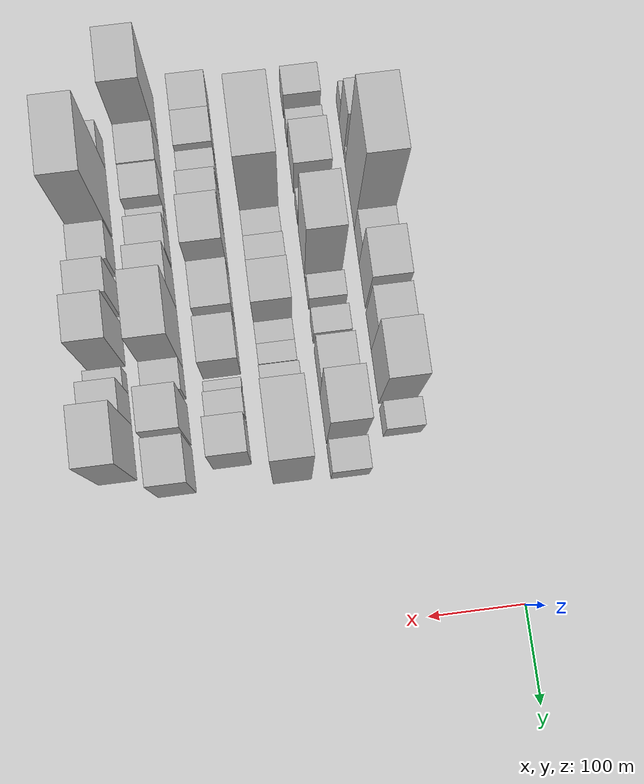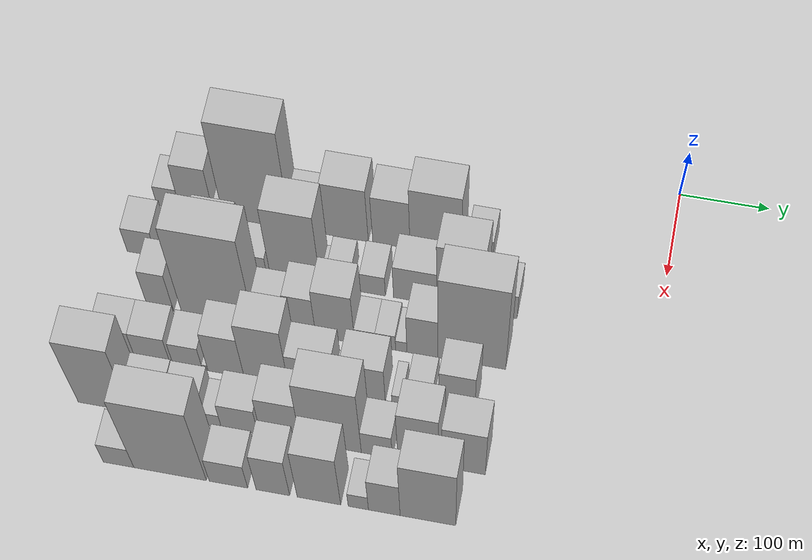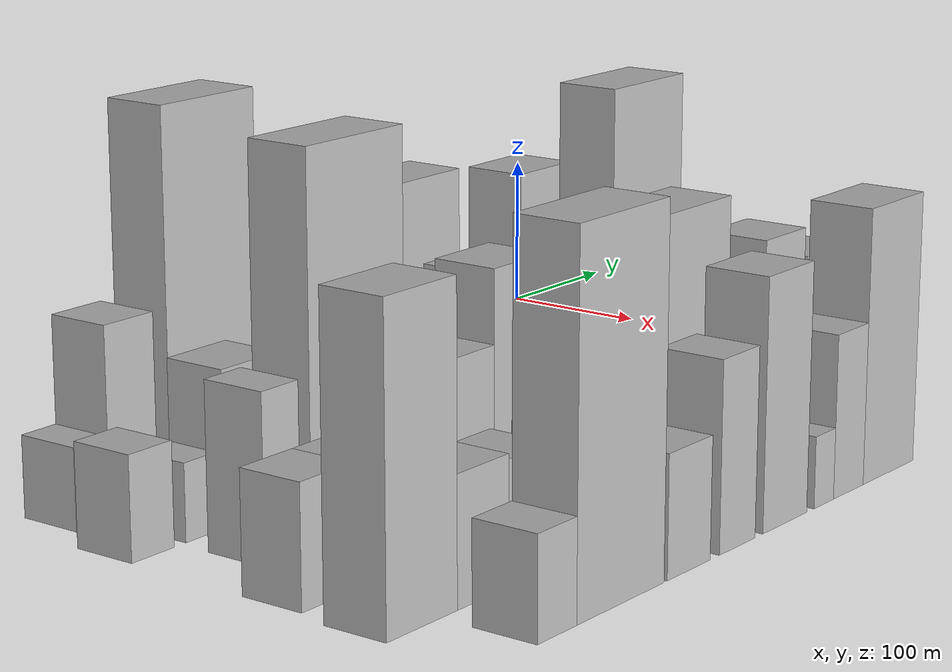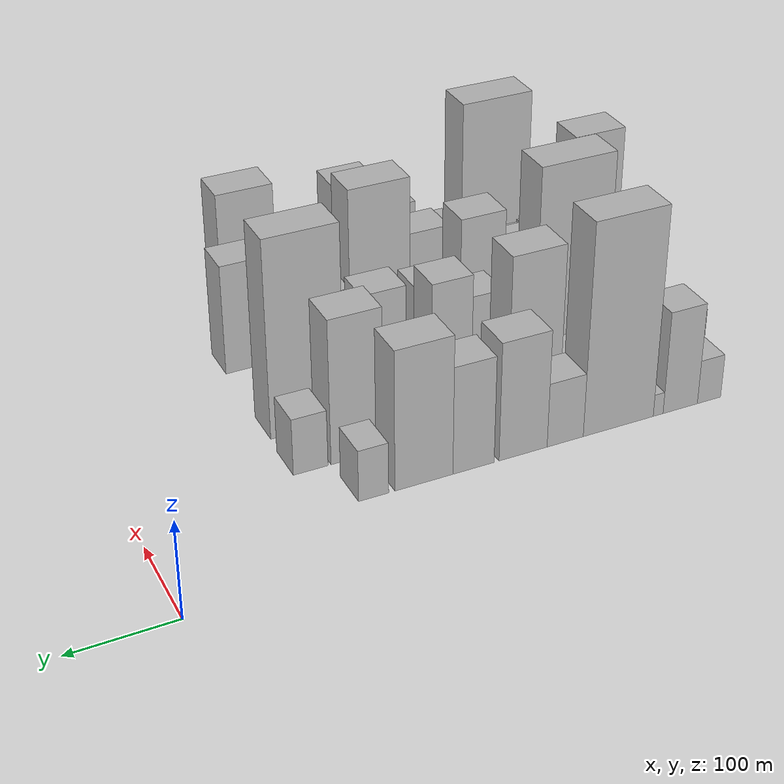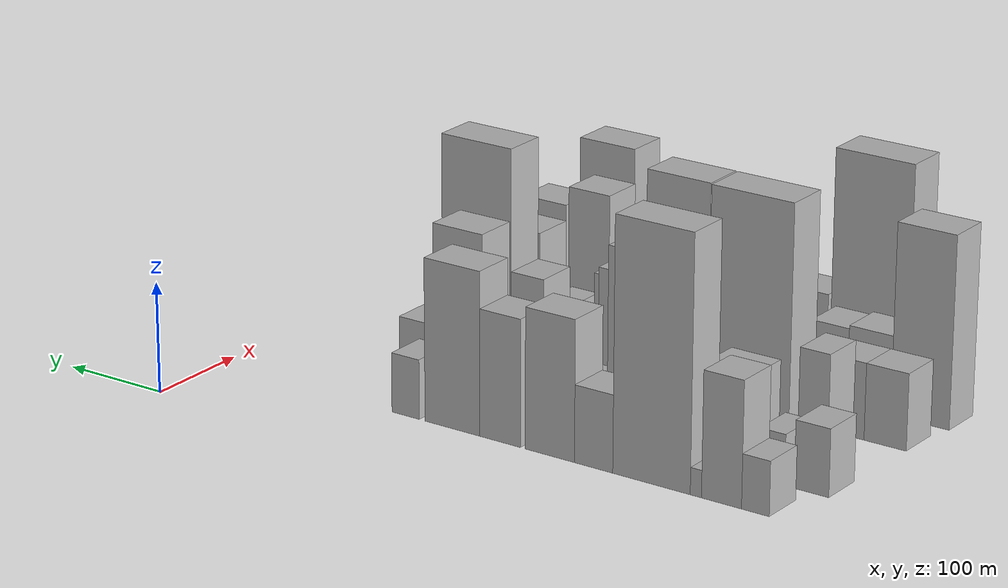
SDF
<sdf version="1.6">
 <world name="default">
  <model name="building_10">
   <static>1</static>
   <pose>100.0000 -553.4120 0 0.000000 0.000000 0.000000</pose>
   <link name="link">
    <pose>0 0 24.00 0 0 0</pose>
    <collision name="collision"><geometry><box><size>40.0000 26.1545 48.0000</size></box></geometry></collision>
    <visual name="visual">
     <cast_shadows>0</cast_shadows>
     <geometry><box><size>40.0000 26.1545 48.0000</size></box></geometry>
     <material>
      <script>
       <uri>model://HANNAS_wall/materials/scripts</uri>
       <uri>model://HANNAS_wall/materials/textures</uri>
       <name>vrc/HANNAS_wall</name>
      </script>
     </material>
    </visual>
   </link>
  </model>
  <model name="building_11">
   <static>1</static>
   <pose>100.0000 -521.2546 0 0.000000 0.000000 0.000000</pose>
   <link name="link">
    <pose>0 0 55.50 0 0 0</pose>
    <collision name="collision"><geometry><box><size>40.0000 38.1603 111.0000</size></box></geometry></collision>
    <visual name="visual">
     <cast_shadows>0</cast_shadows>
     <geometry><box><size>40.0000 38.1603 111.0000</size></box></geometry>
     <material>
      <script>
       <uri>model://HANNAS_wall/materials/scripts</uri>
       <uri>model://HANNAS_wall/materials/textures</uri>
       <name>vrc/HANNAS_wall</name>
      </script>
     </material>
    </visual>
   </link>
  </model>
  <model name="building_12">
   <static>1</static>
   <pose>100.0000 -496.7735 0 0.000000 0.000000 0.000000</pose>
   <link name="link">
    <pose>0 0 12.00 0 0 0</pose>
    <collision name="collision"><geometry><box><size>40.0000 10.8020 24.0000</size></box></geometry></collision>
    <visual name="visual">
     <cast_shadows>0</cast_shadows>
     <geometry><box><size>40.0000 10.8020 24.0000</size></box></geometry>
     <material>
      <script>
       <uri>model://HANNAS_wall/materials/scripts</uri>
       <uri>model://HANNAS_wall/materials/textures</uri>
       <name>vrc/HANNAS_wall</name>
      </script>
     </material>
    </visual>
   </link>
  </model>
  <model name="building_13">
   <static>1</static>
   <pose>100.0000 -453.5605 0 0.000000 0.000000 0.000000</pose>
   <link name="link">
    <pose>0 0 112.50 0 0 0</pose>
    <collision name="collision"><geometry><box><size>40.0000 75.6241 225.0000</size></box></geometry></collision>
    <visual name="visual">
     <cast_shadows>0</cast_shadows>
     <geometry><box><size>40.0000 75.6241 225.0000</size></box></geometry>
     <material>
      <script>
       <uri>model://HANNAS_wall/materials/scripts</uri>
       <uri>model://HANNAS_wall/materials/textures</uri>
       <name>vrc/HANNAS_wall</name>
      </script>
     </material>
    </visual>
   </link>
  </model>
  <model name="building_14">
   <static>1</static>
   <pose>100.0000 -396.7264 0 0.000000 0.000000 0.000000</pose>
   <link name="link">
    <pose>0 0 34.50 0 0 0</pose>
    <collision name="collision"><geometry><box><size>40.0000 38.0440 69.0000</size></box></geometry></collision>
    <visual name="visual">
     <cast_shadows>0</cast_shadows>
     <geometry><box><size>40.0000 38.0440 69.0000</size></box></geometry>
     <material>
      <script>
       <uri>model://HANNAS_wall/materials/scripts</uri>
       <uri>model://HANNAS_wall/materials/textures</uri>
       <name>vrc/HANNAS_wall</name>
      </script>
     </material>
    </visual>
   </link>
  </model>
  <model name="building_15">
   <static>1</static>
   <pose>100.0000 -352.8798 0 0.000000 0.000000 0.000000</pose>
   <link name="link">
    <pose>0 0 63.00 0 0 0</pose>
    <collision name="collision"><geometry><box><size>40.0000 49.6493 126.0000</size></box></geometry></collision>
    <visual name="visual">
     <cast_shadows>0</cast_shadows>
     <geometry><box><size>40.0000 49.6493 126.0000</size></box></geometry>
     <material>
      <script>
       <uri>model://HANNAS_wall/materials/scripts</uri>
       <uri>model://HANNAS_wall/materials/textures</uri>
       <name>vrc/HANNAS_wall</name>
      </script>
     </material>
    </visual>
   </link>
  </model>
  <model name="building_16">
   <static>1</static>
   <pose>100.0000 -302.2776 0 0.000000 0.000000 0.000000</pose>
   <link name="link">
    <pose>0 0 57.00 0 0 0</pose>
    <collision name="collision"><geometry><box><size>40.0000 41.5552 114.0000</size></box></geometry></collision>
    <visual name="visual">
     <cast_shadows>0</cast_shadows>
     <geometry><box><size>40.0000 41.5552 114.0000</size></box></geometry>
     <material>
      <script>
       <uri>model://HANNAS_wall/materials/scripts</uri>
       <uri>model://HANNAS_wall/materials/textures</uri>
       <name>vrc/HANNAS_wall</name>
      </script>
     </material>
    </visual>
   </link>
  </model>
  <model name="building_17">
   <static>1</static>
   <pose>100.0000 -252.9097 0 0.000000 0.000000 0.000000</pose>
   <link name="link">
    <pose>0 0 73.50 0 0 0</pose>
    <collision name="collision"><geometry><box><size>40.0000 57.1807 147.0000</size></box></geometry></collision>
    <visual name="visual">
     <cast_shadows>0</cast_shadows>
     <geometry><box><size>40.0000 57.1807 147.0000</size></box></geometry>
     <material>
      <script>
       <uri>model://HANNAS_wall/materials/scripts</uri>
       <uri>model://HANNAS_wall/materials/textures</uri>
       <name>vrc/HANNAS_wall</name>
      </script>
     </material>
    </visual>
   </link>
  </model>
  <model name="building_18">
   <static>1</static>
   <pose>100.0000 -203.7958 0 0.000000 0.000000 0.000000</pose>
   <link name="link">
    <pose>0 0 27.00 0 0 0</pose>
    <collision name="collision"><geometry><box><size>40.0000 29.0470 54.0000</size></box></geometry></collision>
    <visual name="visual">
     <cast_shadows>0</cast_shadows>
     <geometry><box><size>40.0000 29.0470 54.0000</size></box></geometry>
     <material>
      <script>
       <uri>model://HANNAS_wall/materials/scripts</uri>
       <uri>model://HANNAS_wall/materials/textures</uri>
       <name>vrc/HANNAS_wall</name>
      </script>
     </material>
    </visual>
   </link>
  </model>
  <model name="building_54">
   <static>1</static>
   <pose>160.0000 -569.0382 0 0.000000 0.000000 0.000000</pose>
   <link name="link">
    <pose>0 0 30.00 0 0 0</pose>
    <collision name="collision"><geometry><box><size>40.0000 32.7079 60.0000</size></box></geometry></collision>
    <visual name="visual">
     <cast_shadows>0</cast_shadows>
     <geometry><box><size>40.0000 32.7079 60.0000</size></box></geometry>
     <material>
      <script>
       <uri>model://HANNAS_wall/materials/scripts</uri>
       <uri>model://HANNAS_wall/materials/textures</uri>
       <name>vrc/HANNAS_wall</name>
      </script>
     </material>
    </visual>
   </link>
  </model>
  <model name="building_55">
   <static>1</static>
   <pose>160.0000 -531.1714 0 0.000000 0.000000 0.000000</pose>
   <link name="link">
    <pose>0 0 22.50 0 0 0</pose>
    <collision name="collision"><geometry><box><size>40.0000 25.0259 45.0000</size></box></geometry></collision>
    <visual name="visual">
     <cast_shadows>0</cast_shadows>
     <geometry><box><size>40.0000 25.0259 45.0000</size></box></geometry>
     <material>
      <script>
       <uri>model://HANNAS_wall/materials/scripts</uri>
       <uri>model://HANNAS_wall/materials/textures</uri>
       <name>vrc/HANNAS_wall</name>
      </script>
     </material>
    </visual>
   </link>
  </model>
  <model name="building_56">
   <static>1</static>
   <pose>160.0000 -488.9662 0 0.000000 0.000000 0.000000</pose>
   <link name="link">
    <pose>0 0 45.00 0 0 0</pose>
    <collision name="collision"><geometry><box><size>40.0000 47.3844 90.0000</size></box></geometry></collision>
    <visual name="visual">
     <cast_shadows>0</cast_shadows>
     <geometry><box><size>40.0000 47.3844 90.0000</size></box></geometry>
     <material>
      <script>
       <uri>model://HANNAS_wall/materials/scripts</uri>
       <uri>model://HANNAS_wall/materials/textures</uri>
       <name>vrc/HANNAS_wall</name>
      </script>
     </material>
    </visual>
   </link>
  </model>
  <model name="building_57">
   <static>1</static>
   <pose>160.0000 -442.0590 0 0.000000 0.000000 0.000000</pose>
   <link name="link">
    <pose>0 0 22.50 0 0 0</pose>
    <collision name="collision"><geometry><box><size>40.0000 26.4300 45.0000</size></box></geometry></collision>
    <visual name="visual">
     <cast_shadows>0</cast_shadows>
     <geometry><box><size>40.0000 26.4300 45.0000</size></box></geometry>
     <material>
      <script>
       <uri>model://HANNAS_wall/materials/scripts</uri>
       <uri>model://HANNAS_wall/materials/textures</uri>
       <name>vrc/HANNAS_wall</name>
      </script>
     </material>
    </visual>
   </link>
  </model>
  <model name="building_58">
   <static>1</static>
   <pose>160.0000 -396.9744 0 0.000000 0.000000 0.000000</pose>
   <link name="link">
    <pose>0 0 85.50 0 0 0</pose>
    <collision name="collision"><geometry><box><size>40.0000 55.7393 171.0000</size></box></geometry></collision>
    <visual name="visual">
     <cast_shadows>0</cast_shadows>
     <geometry><box><size>40.0000 55.7393 171.0000</size></box></geometry>
     <material>
      <script>
       <uri>model://HANNAS_wall/materials/scripts</uri>
       <uri>model://HANNAS_wall/materials/textures</uri>
       <name>vrc/HANNAS_wall</name>
      </script>
     </material>
    </visual>
   </link>
  </model>
  <model name="building_59">
   <static>1</static>
   <pose>160.0000 -365.0878 0 0.000000 0.000000 0.000000</pose>
   <link name="link">
    <pose>0 0 9.00 0 0 0</pose>
    <collision name="collision"><geometry><box><size>40.0000 8.0339 18.0000</size></box></geometry></collision>
    <visual name="visual">
     <cast_shadows>0</cast_shadows>
     <geometry><box><size>40.0000 8.0339 18.0000</size></box></geometry>
     <material>
      <script>
       <uri>model://HANNAS_wall/materials/scripts</uri>
       <uri>model://HANNAS_wall/materials/textures</uri>
       <name>vrc/HANNAS_wall</name>
      </script>
     </material>
    </visual>
   </link>
  </model>
  <model name="building_60">
   <static>1</static>
   <pose>160.0000 -347.8792 0 0.000000 0.000000 0.000000</pose>
   <link name="link">
    <pose>0 0 22.50 0 0 0</pose>
    <collision name="collision"><geometry><box><size>40.0000 26.3833 45.0000</size></box></geometry></collision>
    <visual name="visual">
     <cast_shadows>0</cast_shadows>
     <geometry><box><size>40.0000 26.3833 45.0000</size></box></geometry>
     <material>
      <script>
       <uri>model://HANNAS_wall/materials/scripts</uri>
       <uri>model://HANNAS_wall/materials/textures</uri>
       <name>vrc/HANNAS_wall</name>
      </script>
     </material>
    </visual>
   </link>
  </model>
  <model name="building_61">
   <static>1</static>
   <pose>160.0000 -310.9171 0 0.000000 0.000000 0.000000</pose>
   <link name="link">
    <pose>0 0 24.00 0 0 0</pose>
    <collision name="collision"><geometry><box><size>40.0000 27.5410 48.0000</size></box></geometry></collision>
    <visual name="visual">
     <cast_shadows>0</cast_shadows>
     <geometry><box><size>40.0000 27.5410 48.0000</size></box></geometry>
     <material>
      <script>
       <uri>model://HANNAS_wall/materials/scripts</uri>
       <uri>model://HANNAS_wall/materials/textures</uri>
       <name>vrc/HANNAS_wall</name>
      </script>
     </material>
    </visual>
   </link>
  </model>
  <model name="building_62">
   <static>1</static>
   <pose>160.0000 -264.4019 0 0.000000 0.000000 0.000000</pose>
   <link name="link">
    <pose>0 0 40.50 0 0 0</pose>
    <collision name="collision"><geometry><box><size>40.0000 47.4893 81.0000</size></box></geometry></collision>
    <visual name="visual">
     <cast_shadows>0</cast_shadows>
     <geometry><box><size>40.0000 47.4893 81.0000</size></box></geometry>
     <material>
      <script>
       <uri>model://HANNAS_wall/materials/scripts</uri>
       <uri>model://HANNAS_wall/materials/textures</uri>
       <name>vrc/HANNAS_wall</name>
      </script>
     </material>
    </visual>
   </link>
  </model>
  <model name="building_63">
   <static>1</static>
   <pose>160.0000 -214.7615 0 0.000000 0.000000 0.000000</pose>
   <link name="link">
    <pose>0 0 76.50 0 0 0</pose>
    <collision name="collision"><geometry><box><size>40.0000 51.7914 153.0000</size></box></geometry></collision>
    <visual name="visual">
     <cast_shadows>0</cast_shadows>
     <geometry><box><size>40.0000 51.7914 153.0000</size></box></geometry>
     <material>
      <script>
       <uri>model://HANNAS_wall/materials/scripts</uri>
       <uri>model://HANNAS_wall/materials/textures</uri>
       <name>vrc/HANNAS_wall</name>
      </script>
     </material>
    </visual>
   </link>
  </model>
  <model name="building_64">
   <static>1</static>
   <pose>160.0000 -169.0267 0 0.000000 0.000000 0.000000</pose>
   <link name="link">
    <pose>0 0 30.00 0 0 0</pose>
    <collision name="collision"><geometry><box><size>40.0000 33.6783 60.0000</size></box></geometry></collision>
    <visual name="visual">
     <cast_shadows>0</cast_shadows>
     <geometry><box><size>40.0000 33.6783 60.0000</size></box></geometry>
     <material>
      <script>
       <uri>model://HANNAS_wall/materials/scripts</uri>
       <uri>model://HANNAS_wall/materials/textures</uri>
       <name>vrc/HANNAS_wall</name>
      </script>
     </material>
    </visual>
   </link>
  </model>
  <model name="building_104">
   <static>1</static>
   <pose>220.0000 -533.1978 0 0.000000 0.000000 0.000000</pose>
   <link name="link">
    <pose>0 0 48.00 0 0 0</pose>
    <collision name="collision"><geometry><box><size>40.0000 29.0231 96.0000</size></box></geometry></collision>
    <visual name="visual">
     <cast_shadows>0</cast_shadows>
     <geometry><box><size>40.0000 29.0231 96.0000</size></box></geometry>
     <material>
      <script>
       <uri>model://HANNAS_wall/materials/scripts</uri>
       <uri>model://HANNAS_wall/materials/textures</uri>
       <name>vrc/HANNAS_wall</name>
      </script>
     </material>
    </visual>
   </link>
  </model>
  <model name="building_105">
   <static>1</static>
   <pose>220.0000 -469.8214 0 0.000000 0.000000 0.000000</pose>
   <link name="link">
    <pose>0 0 109.50 0 0 0</pose>
    <collision name="collision"><geometry><box><size>40.0000 79.7295 219.0000</size></box></geometry></collision>
    <visual name="visual">
     <cast_shadows>0</cast_shadows>
     <geometry><box><size>40.0000 79.7295 219.0000</size></box></geometry>
     <material>
      <script>
       <uri>model://HANNAS_wall/materials/scripts</uri>
       <uri>model://HANNAS_wall/materials/textures</uri>
       <name>vrc/HANNAS_wall</name>
      </script>
     </material>
    </visual>
   </link>
  </model>
  <model name="building_106">
   <static>1</static>
   <pose>220.0000 -411.6136 0 0.000000 0.000000 0.000000</pose>
   <link name="link">
    <pose>0 0 34.50 0 0 0</pose>
    <collision name="collision"><geometry><box><size>40.0000 36.6861 69.0000</size></box></geometry></collision>
    <visual name="visual">
     <cast_shadows>0</cast_shadows>
     <geometry><box><size>40.0000 36.6861 69.0000</size></box></geometry>
     <material>
      <script>
       <uri>model://HANNAS_wall/materials/scripts</uri>
       <uri>model://HANNAS_wall/materials/textures</uri>
       <name>vrc/HANNAS_wall</name>
      </script>
     </material>
    </visual>
   </link>
  </model>
  <model name="building_107">
   <static>1</static>
   <pose>220.0000 -377.3338 0 0.000000 0.000000 0.000000</pose>
   <link name="link">
    <pose>0 0 49.50 0 0 0</pose>
    <collision name="collision"><geometry><box><size>40.0000 31.8736 99.0000</size></box></geometry></collision>
    <visual name="visual">
     <cast_shadows>0</cast_shadows>
     <geometry><box><size>40.0000 31.8736 99.0000</size></box></geometry>
     <material>
      <script>
       <uri>model://HANNAS_wall/materials/scripts</uri>
       <uri>model://HANNAS_wall/materials/textures</uri>
       <name>vrc/HANNAS_wall</name>
      </script>
     </material>
    </visual>
   </link>
  </model>
  <model name="building_108">
   <static>1</static>
   <pose>220.0000 -340.1120 0 0.000000 0.000000 0.000000</pose>
   <link name="link">
    <pose>0 0 61.50 0 0 0</pose>
    <collision name="collision"><geometry><box><size>40.0000 42.5701 123.0000</size></box></geometry></collision>
    <visual name="visual">
     <cast_shadows>0</cast_shadows>
     <geometry><box><size>40.0000 42.5701 123.0000</size></box></geometry>
     <material>
      <script>
       <uri>model://HANNAS_wall/materials/scripts</uri>
       <uri>model://HANNAS_wall/materials/textures</uri>
       <name>vrc/HANNAS_wall</name>
      </script>
     </material>
    </visual>
   </link>
  </model>
  <model name="building_109">
   <static>1</static>
   <pose>220.0000 -307.3643 0 0.000000 0.000000 0.000000</pose>
   <link name="link">
    <pose>0 0 19.50 0 0 0</pose>
    <collision name="collision"><geometry><box><size>40.0000 22.9253 39.0000</size></box></geometry></collision>
    <visual name="visual">
     <cast_shadows>0</cast_shadows>
     <geometry><box><size>40.0000 22.9253 39.0000</size></box></geometry>
     <material>
      <script>
       <uri>model://HANNAS_wall/materials/scripts</uri>
       <uri>model://HANNAS_wall/materials/textures</uri>
       <name>vrc/HANNAS_wall</name>
      </script>
     </material>
    </visual>
   </link>
  </model>
  <model name="building_110">
   <static>1</static>
   <pose>220.0000 -284.9849 0 0.000000 0.000000 0.000000</pose>
   <link name="link">
    <pose>0 0 19.50 0 0 0</pose>
    <collision name="collision"><geometry><box><size>40.0000 21.8335 39.0000</size></box></geometry></collision>
    <visual name="visual">
     <cast_shadows>0</cast_shadows>
     <geometry><box><size>40.0000 21.8335 39.0000</size></box></geometry>
     <material>
      <script>
       <uri>model://HANNAS_wall/materials/scripts</uri>
       <uri>model://HANNAS_wall/materials/textures</uri>
       <name>vrc/HANNAS_wall</name>
      </script>
     </material>
    </visual>
   </link>
  </model>
  <model name="building_111">
   <static>1</static>
   <pose>220.0000 -267.8997 0 0.000000 0.000000 0.000000</pose>
   <link name="link">
    <pose>0 0 13.50 0 0 0</pose>
    <collision name="collision"><geometry><box><size>40.0000 12.3370 27.0000</size></box></geometry></collision>
    <visual name="visual">
     <cast_shadows>0</cast_shadows>
     <geometry><box><size>40.0000 12.3370 27.0000</size></box></geometry>
     <material>
      <script>
       <uri>model://HANNAS_wall/materials/scripts</uri>
       <uri>model://HANNAS_wall/materials/textures</uri>
       <name>vrc/HANNAS_wall</name>
      </script>
     </material>
    </visual>
   </link>
  </model>
  <model name="building_112">
   <static>1</static>
   <pose>220.0000 -244.8196 0 0.000000 0.000000 0.000000</pose>
   <link name="link">
    <pose>0 0 49.50 0 0 0</pose>
    <collision name="collision"><geometry><box><size>40.0000 33.8231 99.0000</size></box></geometry></collision>
    <visual name="visual">
     <cast_shadows>0</cast_shadows>
     <geometry><box><size>40.0000 33.8231 99.0000</size></box></geometry>
     <material>
      <script>
       <uri>model://HANNAS_wall/materials/scripts</uri>
       <uri>model://HANNAS_wall/materials/textures</uri>
       <name>vrc/HANNAS_wall</name>
      </script>
     </material>
    </visual>
   </link>
  </model>
  <model name="building_113">
   <static>1</static>
   <pose>220.0000 -191.0599 0 0.000000 0.000000 0.000000</pose>
   <link name="link">
    <pose>0 0 105.00 0 0 0</pose>
    <collision name="collision"><geometry><box><size>40.0000 73.6963 210.0000</size></box></geometry></collision>
    <visual name="visual">
     <cast_shadows>0</cast_shadows>
     <geometry><box><size>40.0000 73.6963 210.0000</size></box></geometry>
     <material>
      <script>
       <uri>model://HANNAS_wall/materials/scripts</uri>
       <uri>model://HANNAS_wall/materials/textures</uri>
       <name>vrc/HANNAS_wall</name>
      </script>
     </material>
    </visual>
   </link>
  </model>
  <model name="building_158">
   <static>1</static>
   <pose>280.0000 -567.2385 0 0.000000 0.000000 0.000000</pose>
   <link name="link">
    <pose>0 0 34.50 0 0 0</pose>
    <collision name="collision"><geometry><box><size>40.0000 40.6341 69.0000</size></box></geometry></collision>
    <visual name="visual">
     <cast_shadows>0</cast_shadows>
     <geometry><box><size>40.0000 40.6341 69.0000</size></box></geometry>
     <material>
      <script>
       <uri>model://HANNAS_wall/materials/scripts</uri>
       <uri>model://HANNAS_wall/materials/textures</uri>
       <name>vrc/HANNAS_wall</name>
      </script>
     </material>
    </visual>
   </link>
  </model>
  <model name="building_159">
   <static>1</static>
   <pose>280.0000 -527.5071 0 0.000000 0.000000 0.000000</pose>
   <link name="link">
    <pose>0 0 34.50 0 0 0</pose>
    <collision name="collision"><geometry><box><size>40.0000 38.8287 69.0000</size></box></geometry></collision>
    <visual name="visual">
     <cast_shadows>0</cast_shadows>
     <geometry><box><size>40.0000 38.8287 69.0000</size></box></geometry>
     <material>
      <script>
       <uri>model://HANNAS_wall/materials/scripts</uri>
       <uri>model://HANNAS_wall/materials/textures</uri>
       <name>vrc/HANNAS_wall</name>
      </script>
     </material>
    </visual>
   </link>
  </model>
  <model name="building_160">
   <static>1</static>
   <pose>280.0000 -488.8981 0 0.000000 0.000000 0.000000</pose>
   <link name="link">
    <pose>0 0 30.00 0 0 0</pose>
    <collision name="collision"><geometry><box><size>40.0000 32.3893 60.0000</size></box></geometry></collision>
    <visual name="visual">
     <cast_shadows>0</cast_shadows>
     <geometry><box><size>40.0000 32.3893 60.0000</size></box></geometry>
     <material>
      <script>
       <uri>model://HANNAS_wall/materials/scripts</uri>
       <uri>model://HANNAS_wall/materials/textures</uri>
       <name>vrc/HANNAS_wall</name>
      </script>
     </material>
    </visual>
   </link>
  </model>
  <model name="building_161">
   <static>1</static>
   <pose>280.0000 -469.6710 0 0.000000 0.000000 0.000000</pose>
   <link name="link">
    <pose>0 0 7.50 0 0 0</pose>
    <collision name="collision"><geometry><box><size>40.0000 6.0651 15.0000</size></box></geometry></collision>
    <visual name="visual">
     <cast_shadows>0</cast_shadows>
     <geometry><box><size>40.0000 6.0651 15.0000</size></box></geometry>
     <material>
      <script>
       <uri>model://HANNAS_wall/materials/scripts</uri>
       <uri>model://HANNAS_wall/materials/textures</uri>
       <name>vrc/HANNAS_wall</name>
      </script>
     </material>
    </visual>
   </link>
  </model>
  <model name="building_162">
   <static>1</static>
   <pose>280.0000 -446.8556 0 0.000000 0.000000 0.000000</pose>
   <link name="link">
    <pose>0 0 52.50 0 0 0</pose>
    <collision name="collision"><geometry><box><size>40.0000 39.5656 105.0000</size></box></geometry></collision>
    <visual name="visual">
     <cast_shadows>0</cast_shadows>
     <geometry><box><size>40.0000 39.5656 105.0000</size></box></geometry>
     <material>
      <script>
       <uri>model://HANNAS_wall/materials/scripts</uri>
       <uri>model://HANNAS_wall/materials/textures</uri>
       <name>vrc/HANNAS_wall</name>
      </script>
     </material>
    </visual>
   </link>
  </model>
  <model name="building_163">
   <static>1</static>
   <pose>280.0000 -402.9466 0 0.000000 0.000000 0.000000</pose>
   <link name="link">
    <pose>0 0 73.50 0 0 0</pose>
    <collision name="collision"><geometry><box><size>40.0000 48.2525 147.0000</size></box></geometry></collision>
    <visual name="visual">
     <cast_shadows>0</cast_shadows>
     <geometry><box><size>40.0000 48.2525 147.0000</size></box></geometry>
     <material>
      <script>
       <uri>model://HANNAS_wall/materials/scripts</uri>
       <uri>model://HANNAS_wall/materials/textures</uri>
       <name>vrc/HANNAS_wall</name>
      </script>
     </material>
    </visual>
   </link>
  </model>
  <model name="building_164">
   <static>1</static>
   <pose>280.0000 -354.5082 0 0.000000 0.000000 0.000000</pose>
   <link name="link">
    <pose>0 0 42.00 0 0 0</pose>
    <collision name="collision"><geometry><box><size>40.0000 48.6243 84.0000</size></box></geometry></collision>
    <visual name="visual">
     <cast_shadows>0</cast_shadows>
     <geometry><box><size>40.0000 48.6243 84.0000</size></box></geometry>
     <material>
      <script>
       <uri>model://HANNAS_wall/materials/scripts</uri>
       <uri>model://HANNAS_wall/materials/textures</uri>
       <name>vrc/HANNAS_wall</name>
      </script>
     </material>
    </visual>
   </link>
  </model>
  <model name="building_165">
   <static>1</static>
   <pose>280.0000 -325.3545 0 0.000000 0.000000 0.000000</pose>
   <link name="link">
    <pose>0 0 12.00 0 0 0</pose>
    <collision name="collision"><geometry><box><size>40.0000 9.6832 24.0000</size></box></geometry></collision>
    <visual name="visual">
     <cast_shadows>0</cast_shadows>
     <geometry><box><size>40.0000 9.6832 24.0000</size></box></geometry>
     <material>
      <script>
       <uri>model://HANNAS_wall/materials/scripts</uri>
       <uri>model://HANNAS_wall/materials/textures</uri>
       <name>vrc/HANNAS_wall</name>
      </script>
     </material>
    </visual>
   </link>
  </model>
  <model name="building_166">
   <static>1</static>
   <pose>280.0000 -297.0062 0 0.000000 0.000000 0.000000</pose>
   <link name="link">
    <pose>0 0 45.00 0 0 0</pose>
    <collision name="collision"><geometry><box><size>40.0000 47.0134 90.0000</size></box></geometry></collision>
    <visual name="visual">
     <cast_shadows>0</cast_shadows>
     <geometry><box><size>40.0000 47.0134 90.0000</size></box></geometry>
     <material>
      <script>
       <uri>model://HANNAS_wall/materials/scripts</uri>
       <uri>model://HANNAS_wall/materials/textures</uri>
       <name>vrc/HANNAS_wall</name>
      </script>
     </material>
    </visual>
   </link>
  </model>
  <model name="building_167">
   <static>1</static>
   <pose>280.0000 -260.8635 0 0.000000 0.000000 0.000000</pose>
   <link name="link">
    <pose>0 0 12.00 0 0 0</pose>
    <collision name="collision"><geometry><box><size>40.0000 11.2719 24.0000</size></box></geometry></collision>
    <visual name="visual">
     <cast_shadows>0</cast_shadows>
     <geometry><box><size>40.0000 11.2719 24.0000</size></box></geometry>
     <material>
      <script>
       <uri>model://HANNAS_wall/materials/scripts</uri>
       <uri>model://HANNAS_wall/materials/textures</uri>
       <name>vrc/HANNAS_wall</name>
      </script>
     </material>
    </visual>
   </link>
  </model>
  <model name="building_168">
   <static>1</static>
   <pose>280.0000 -236.5113 0 0.000000 0.000000 0.000000</pose>
   <link name="link">
    <pose>0 0 27.00 0 0 0</pose>
    <collision name="collision"><geometry><box><size>40.0000 27.4324 54.0000</size></box></geometry></collision>
    <visual name="visual">
     <cast_shadows>0</cast_shadows>
     <geometry><box><size>40.0000 27.4324 54.0000</size></box></geometry>
     <material>
      <script>
       <uri>model://HANNAS_wall/materials/scripts</uri>
       <uri>model://HANNAS_wall/materials/textures</uri>
       <name>vrc/HANNAS_wall</name>
      </script>
     </material>
    </visual>
   </link>
  </model>
  <model name="building_169">
   <static>1</static>
   <pose>280.0000 -219.3157 0 0.000000 0.000000 0.000000</pose>
   <link name="link">
    <pose>0 0 7.50 0 0 0</pose>
    <collision name="collision"><geometry><box><size>40.0000 6.9588 15.0000</size></box></geometry></collision>
    <visual name="visual">
     <cast_shadows>0</cast_shadows>
     <geometry><box><size>40.0000 6.9588 15.0000</size></box></geometry>
     <material>
      <script>
       <uri>model://HANNAS_wall/materials/scripts</uri>
       <uri>model://HANNAS_wall/materials/textures</uri>
       <name>vrc/HANNAS_wall</name>
      </script>
     </material>
    </visual>
   </link>
  </model>
  <model name="building_170">
   <static>1</static>
   <pose>280.0000 -196.5326 0 0.000000 0.000000 0.000000</pose>
   <link name="link">
    <pose>0 0 57.00 0 0 0</pose>
    <collision name="collision"><geometry><box><size>40.0000 38.6075 114.0000</size></box></geometry></collision>
    <visual name="visual">
     <cast_shadows>0</cast_shadows>
     <geometry><box><size>40.0000 38.6075 114.0000</size></box></geometry>
     <material>
      <script>
       <uri>model://HANNAS_wall/materials/scripts</uri>
       <uri>model://HANNAS_wall/materials/textures</uri>
       <name>vrc/HANNAS_wall</name>
      </script>
     </material>
    </visual>
   </link>
  </model>
  <model name="building_216">
   <static>1</static>
   <pose>340.0000 -565.8324 0 0.000000 0.000000 0.000000</pose>
   <link name="link">
    <pose>0 0 87.00 0 0 0</pose>
    <collision name="collision"><geometry><box><size>40.0000 56.6476 174.0000</size></box></geometry></collision>
    <visual name="visual">
     <cast_shadows>0</cast_shadows>
     <geometry><box><size>40.0000 56.6476 174.0000</size></box></geometry>
     <material>
      <script>
       <uri>model://HANNAS_wall/materials/scripts</uri>
       <uri>model://HANNAS_wall/materials/textures</uri>
       <name>vrc/HANNAS_wall</name>
      </script>
     </material>
    </visual>
   </link>
  </model>
  <model name="building_217">
   <static>1</static>
   <pose>340.0000 -515.9963 0 0.000000 0.000000 0.000000</pose>
   <link name="link">
    <pose>0 0 36.00 0 0 0</pose>
    <collision name="collision"><geometry><box><size>40.0000 43.0246 72.0000</size></box></geometry></collision>
    <visual name="visual">
     <cast_shadows>0</cast_shadows>
     <geometry><box><size>40.0000 43.0246 72.0000</size></box></geometry>
     <material>
      <script>
       <uri>model://HANNAS_wall/materials/scripts</uri>
       <uri>model://HANNAS_wall/materials/textures</uri>
       <name>vrc/HANNAS_wall</name>
      </script>
     </material>
    </visual>
   </link>
  </model>
  <model name="building_218">
   <static>1</static>
   <pose>340.0000 -475.8066 0 0.000000 0.000000 0.000000</pose>
   <link name="link">
    <pose>0 0 34.50 0 0 0</pose>
    <collision name="collision"><geometry><box><size>40.0000 37.3549 69.0000</size></box></geometry></collision>
    <visual name="visual">
     <cast_shadows>0</cast_shadows>
     <geometry><box><size>40.0000 37.3549 69.0000</size></box></geometry>
     <material>
      <script>
       <uri>model://HANNAS_wall/materials/scripts</uri>
       <uri>model://HANNAS_wall/materials/textures</uri>
       <name>vrc/HANNAS_wall</name>
      </script>
     </material>
    </visual>
   </link>
  </model>
  <model name="building_219">
   <static>1</static>
   <pose>340.0000 -447.6918 0 0.000000 0.000000 0.000000</pose>
   <link name="link">
    <pose>0 0 18.00 0 0 0</pose>
    <collision name="collision"><geometry><box><size>40.0000 18.8747 36.0000</size></box></geometry></collision>
    <visual name="visual">
     <cast_shadows>0</cast_shadows>
     <geometry><box><size>40.0000 18.8747 36.0000</size></box></geometry>
     <material>
      <script>
       <uri>model://HANNAS_wall/materials/scripts</uri>
       <uri>model://HANNAS_wall/materials/textures</uri>
       <name>vrc/HANNAS_wall</name>
      </script>
     </material>
    </visual>
   </link>
  </model>
  <model name="building_220">
   <static>1</static>
   <pose>340.0000 -418.4311 0 0.000000 0.000000 0.000000</pose>
   <link name="link">
    <pose>0 0 34.50 0 0 0</pose>
    <collision name="collision"><geometry><box><size>40.0000 39.6467 69.0000</size></box></geometry></collision>
    <visual name="visual">
     <cast_shadows>0</cast_shadows>
     <geometry><box><size>40.0000 39.6467 69.0000</size></box></geometry>
     <material>
      <script>
       <uri>model://HANNAS_wall/materials/scripts</uri>
       <uri>model://HANNAS_wall/materials/textures</uri>
       <name>vrc/HANNAS_wall</name>
      </script>
     </material>
    </visual>
   </link>
  </model>
  <model name="building_221">
   <static>1</static>
   <pose>340.0000 -374.2038 0 0.000000 0.000000 0.000000</pose>
   <link name="link">
    <pose>0 0 54.00 0 0 0</pose>
    <collision name="collision"><geometry><box><size>40.0000 42.8080 108.0000</size></box></geometry></collision>
    <visual name="visual">
     <cast_shadows>0</cast_shadows>
     <geometry><box><size>40.0000 42.8080 108.0000</size></box></geometry>
     <material>
      <script>
       <uri>model://HANNAS_wall/materials/scripts</uri>
       <uri>model://HANNAS_wall/materials/textures</uri>
       <name>vrc/HANNAS_wall</name>
      </script>
     </material>
    </visual>
   </link>
  </model>
  <model name="building_222">
   <static>1</static>
   <pose>340.0000 -320.0629 0 0.000000 0.000000 0.000000</pose>
   <link name="link">
    <pose>0 0 85.50 0 0 0</pose>
    <collision name="collision"><geometry><box><size>40.0000 65.4738 171.0000</size></box></geometry></collision>
    <visual name="visual">
     <cast_shadows>0</cast_shadows>
     <geometry><box><size>40.0000 65.4738 171.0000</size></box></geometry>
     <material>
      <script>
       <uri>model://HANNAS_wall/materials/scripts</uri>
       <uri>model://HANNAS_wall/materials/textures</uri>
       <name>vrc/HANNAS_wall</name>
      </script>
     </material>
    </visual>
   </link>
  </model>
  <model name="building_223">
   <static>1</static>
   <pose>340.0000 -270.7718 0 0.000000 0.000000 0.000000</pose>
   <link name="link">
    <pose>0 0 31.50 0 0 0</pose>
    <collision name="collision"><geometry><box><size>40.0000 33.1084 63.0000</size></box></geometry></collision>
    <visual name="visual">
     <cast_shadows>0</cast_shadows>
     <geometry><box><size>40.0000 33.1084 63.0000</size></box></geometry>
     <material>
      <script>
       <uri>model://HANNAS_wall/materials/scripts</uri>
       <uri>model://HANNAS_wall/materials/textures</uri>
       <name>vrc/HANNAS_wall</name>
      </script>
     </material>
    </visual>
   </link>
  </model>
  <model name="building_224">
   <static>1</static>
   <pose>340.0000 -226.4876 0 0.000000 0.000000 0.000000</pose>
   <link name="link">
    <pose>0 0 69.00 0 0 0</pose>
    <collision name="collision"><geometry><box><size>40.0000 43.4599 138.0000</size></box></geometry></collision>
    <visual name="visual">
     <cast_shadows>0</cast_shadows>
     <geometry><box><size>40.0000 43.4599 138.0000</size></box></geometry>
     <material>
      <script>
       <uri>model://HANNAS_wall/materials/scripts</uri>
       <uri>model://HANNAS_wall/materials/textures</uri>
       <name>vrc/HANNAS_wall</name>
      </script>
     </material>
    </visual>
   </link>
  </model>
  <model name="building_225">
   <static>1</static>
   <pose>340.0000 -178.3755 0 0.000000 0.000000 0.000000</pose>
   <link name="link">
    <pose>0 0 60.00 0 0 0</pose>
    <collision name="collision"><geometry><box><size>40.0000 46.7643 120.0000</size></box></geometry></collision>
    <visual name="visual">
     <cast_shadows>0</cast_shadows>
     <geometry><box><size>40.0000 46.7643 120.0000</size></box></geometry>
     <material>
      <script>
       <uri>model://HANNAS_wall/materials/scripts</uri>
       <uri>model://HANNAS_wall/materials/textures</uri>
       <name>vrc/HANNAS_wall</name>
      </script>
     </material>
    </visual>
   </link>
  </model>
  <model name="building_268">
   <static>1</static>
   <pose>400.0000 -535.0618 0 0.000000 0.000000 0.000000</pose>
   <link name="link">
    <pose>0 0 28.50 0 0 0</pose>
    <collision name="collision"><geometry><box><size>40.0000 33.0391 57.0000</size></box></geometry></collision>
    <visual name="visual">
     <cast_shadows>0</cast_shadows>
     <geometry><box><size>40.0000 33.0391 57.0000</size></box></geometry>
     <material>
      <script>
       <uri>model://HANNAS_wall/materials/scripts</uri>
       <uri>model://HANNAS_wall/materials/textures</uri>
       <name>vrc/HANNAS_wall</name>
      </script>
     </material>
    </visual>
   </link>
  </model>
  <model name="building_269">
   <static>1</static>
   <pose>400.0000 -479.5123 0 0.000000 0.000000 0.000000</pose>
   <link name="link">
    <pose>0 0 102.00 0 0 0</pose>
    <collision name="collision"><geometry><box><size>40.0000 78.0598 204.0000</size></box></geometry></collision>
    <visual name="visual">
     <cast_shadows>0</cast_shadows>
     <geometry><box><size>40.0000 78.0598 204.0000</size></box></geometry>
     <material>
      <script>
       <uri>model://HANNAS_wall/materials/scripts</uri>
       <uri>model://HANNAS_wall/materials/textures</uri>
       <name>vrc/HANNAS_wall</name>
      </script>
     </material>
    </visual>
   </link>
  </model>
  <model name="building_270">
   <static>1</static>
   <pose>400.0000 -416.8966 0 0.000000 0.000000 0.000000</pose>
   <link name="link">
    <pose>0 0 34.50 0 0 0</pose>
    <collision name="collision"><geometry><box><size>40.0000 41.1717 69.0000</size></box></geometry></collision>
    <visual name="visual">
     <cast_shadows>0</cast_shadows>
     <geometry><box><size>40.0000 41.1717 69.0000</size></box></geometry>
     <material>
      <script>
       <uri>model://HANNAS_wall/materials/scripts</uri>
       <uri>model://HANNAS_wall/materials/textures</uri>
       <name>vrc/HANNAS_wall</name>
      </script>
     </material>
    </visual>
   </link>
  </model>
  <model name="building_271">
   <static>1</static>
   <pose>400.0000 -369.3567 0 0.000000 0.000000 0.000000</pose>
   <link name="link">
    <pose>0 0 54.00 0 0 0</pose>
    <collision name="collision"><geometry><box><size>40.0000 35.9081 108.0000</size></box></geometry></collision>
    <visual name="visual">
     <cast_shadows>0</cast_shadows>
     <geometry><box><size>40.0000 35.9081 108.0000</size></box></geometry>
     <material>
      <script>
       <uri>model://HANNAS_wall/materials/scripts</uri>
       <uri>model://HANNAS_wall/materials/textures</uri>
       <name>vrc/HANNAS_wall</name>
      </script>
     </material>
    </visual>
   </link>
  </model>
  <model name="building_272">
   <static>1</static>
   <pose>400.0000 -320.2535 0 0.000000 0.000000 0.000000</pose>
   <link name="link">
    <pose>0 0 72.00 0 0 0</pose>
    <collision name="collision"><geometry><box><size>40.0000 46.2983 144.0000</size></box></geometry></collision>
    <visual name="visual">
     <cast_shadows>0</cast_shadows>
     <geometry><box><size>40.0000 46.2983 144.0000</size></box></geometry>
     <material>
      <script>
       <uri>model://HANNAS_wall/materials/scripts</uri>
       <uri>model://HANNAS_wall/materials/textures</uri>
       <name>vrc/HANNAS_wall</name>
      </script>
     </material>
    </visual>
   </link>
  </model>
  <model name="building_273">
   <static>1</static>
   <pose>400.0000 -278.3790 0 0.000000 0.000000 0.000000</pose>
   <link name="link">
    <pose>0 0 21.00 0 0 0</pose>
    <collision name="collision"><geometry><box><size>40.0000 21.4507 42.0000</size></box></geometry></collision>
    <visual name="visual">
     <cast_shadows>0</cast_shadows>
     <geometry><box><size>40.0000 21.4507 42.0000</size></box></geometry>
     <material>
      <script>
       <uri>model://HANNAS_wall/materials/scripts</uri>
       <uri>model://HANNAS_wall/materials/textures</uri>
       <name>vrc/HANNAS_wall</name>
      </script>
     </material>
    </visual>
   </link>
  </model>
  <model name="building_274">
   <static>1</static>
   <pose>400.0000 -250.8893 0 0.000000 0.000000 0.000000</pose>
   <link name="link">
    <pose>0 0 48.00 0 0 0</pose>
    <collision name="collision"><geometry><box><size>40.0000 33.5288 96.0000</size></box></geometry></collision>
    <visual name="visual">
     <cast_shadows>0</cast_shadows>
     <geometry><box><size>40.0000 33.5288 96.0000</size></box></geometry>
     <material>
      <script>
       <uri>model://HANNAS_wall/materials/scripts</uri>
       <uri>model://HANNAS_wall/materials/textures</uri>
       <name>vrc/HANNAS_wall</name>
      </script>
     </material>
    </visual>
   </link>
  </model>
  <model name="building_275">
   <static>1</static>
   <pose>400.0000 -204.7729 0 0.000000 0.000000 0.000000</pose>
   <link name="link">
    <pose>0 0 81.00 0 0 0</pose>
    <collision name="collision"><geometry><box><size>40.0000 58.7040 162.0000</size></box></geometry></collision>
    <visual name="visual">
     <cast_shadows>0</cast_shadows>
     <geometry><box><size>40.0000 58.7040 162.0000</size></box></geometry>
     <material>
      <script>
       <uri>model://HANNAS_wall/materials/scripts</uri>
       <uri>model://HANNAS_wall/materials/textures</uri>
       <name>vrc/HANNAS_wall</name>
      </script>
     </material>
    </visual>
   </link>
  </model>
 </world>
</sdf>
